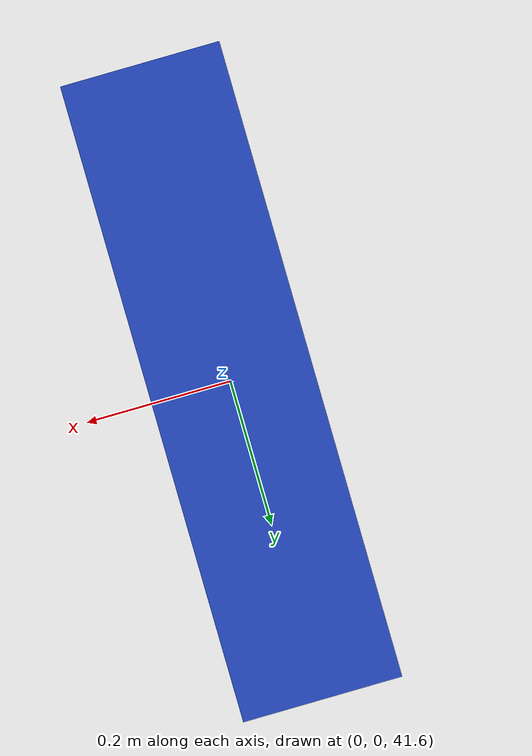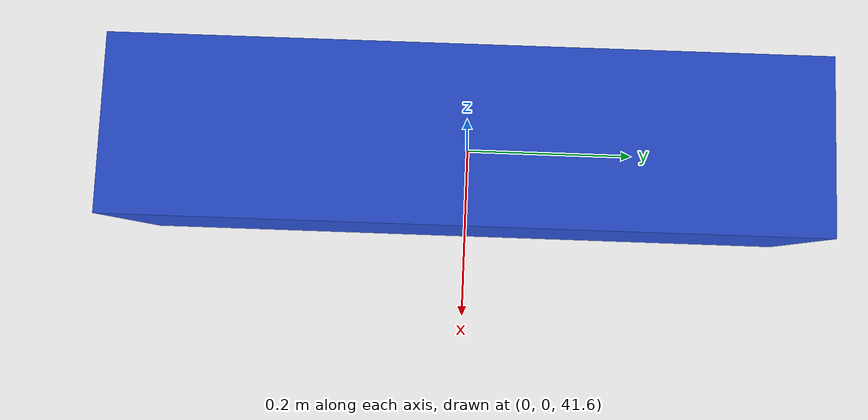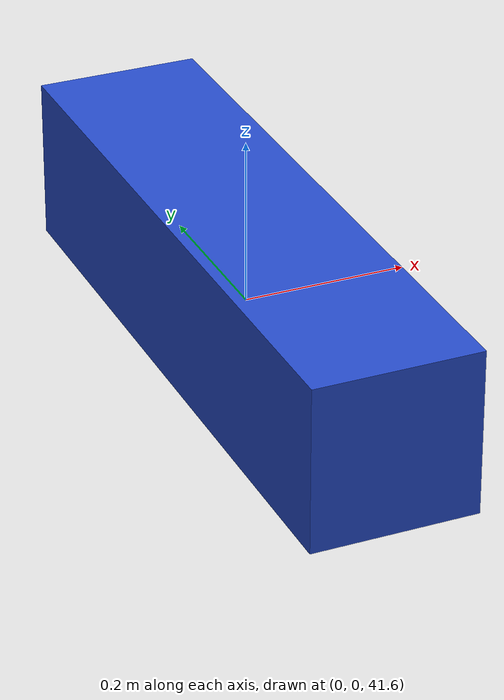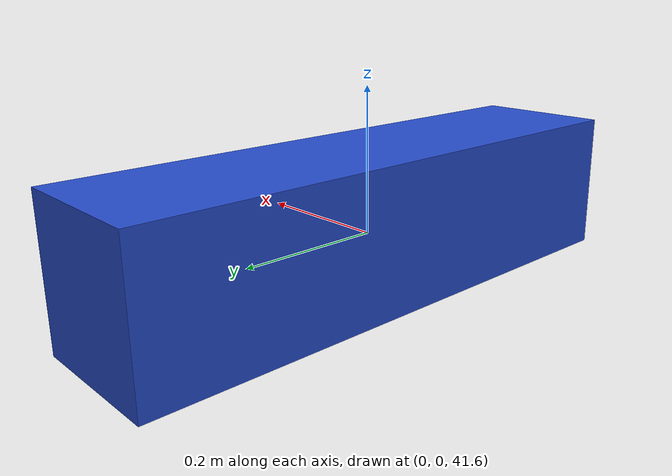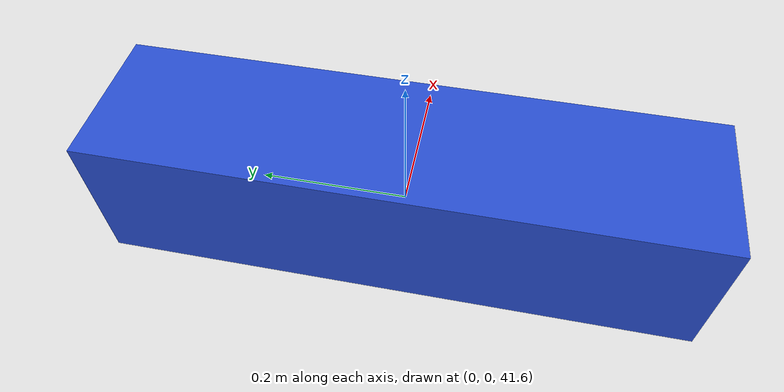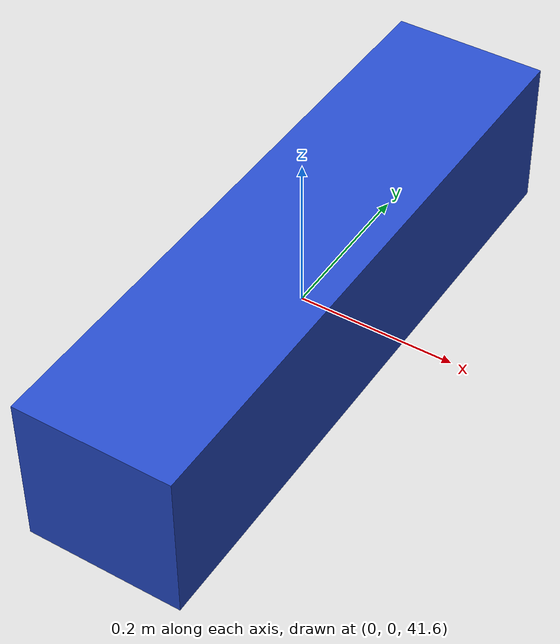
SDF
<sdf version="1.6">
  <world name="default">

  <gui fullscreen='0'>
    <plugin name='keyboard' filename='libKeyboardGUIPlugin.so'/>
      <camera name='user_camera'>
        <pose>0 -5 120 0 1.5708 0</pose>
        <view_controller>orbit</view_controller>
        <projection_type>perspective</projection_type>
      </camera>
  </gui>

  <scene>
    <ambient>0.4 0.4 0.4 1</ambient>
    <background>0.7 0.7 0.7 1</background>
    <shadows>0</shadows>
  </scene>

  <model name='top_camera'> <!-- 모델의 이름 -->
      <link name='top_camera_link'> <!-- 링크 정의 -->
        <inertial>
          <mass>1</mass>
          <inertia>
            <ixx>0.166667</ixx>
            <ixy>0</ixy>
            <ixz>0</ixz>
            <iyy>0.166667</iyy>
            <iyz>0</iyz>
            <izz>0.166667</izz>
          </inertia>
          <pose>0 0 0 0 0 1.57</pose> <!-- 카메라 박스 위치 조정 -->
        </inertial>
        <pose>0 0 0 0 -0 0</pose>
        <gravity>1</gravity>
        <self_collide>0</self_collide>
        <kinematic>0</kinematic>
        <enable_wind>0</enable_wind>
        <visual name='visual'>
          <pose>0 0 0 0 0 1.57</pose> <!-- 카메라 박스 위치 조정 -->
          <geometry>
            <box>
              <size>0.8 0.2 0.2</size>
            </box>
          </geometry>
          <material>
            <lighting>1</lighting>
            <script>
              <uri>file://media/materials/scripts/gazebo.material</uri>
              <name>Gazebo/Blue</name>
            </script>
            <shader type='pixel'>
              <normal_map>__default__</normal_map>
            </shader>
            <ambient>0.3 0.3 0.3 1</ambient>
            <diffuse>0.7 0.7 0.7 1</diffuse>
            <specular>0.01 0.01 0.01 1</specular>
            <emissive>0 0 0 1</emissive>
          </material>
          <transparency>0</transparency>
          <cast_shadows>0</cast_shadows>
        </visual>
        <collision name='collision'>
          <laser_retro>0</laser_retro>
          <max_contacts>10</max_contacts>
          <pose>0 0 0 0 0 1.57</pose> <!-- 카메라 박스 위치 조정 -->
          <geometry>
            <box>
              <size>0.8 0.2 0.2</size>
            </box>
          </geometry>
          <surface>
            <friction>
              <ode>
                <mu>1</mu>
                <mu2>1</mu2>
                <fdir1>0 0 0</fdir1>
                <slip1>0</slip1>
                <slip2>0</slip2>
              </ode>
              <torsional>
                <coefficient>1</coefficient>
                <patch_radius>0</patch_radius>
                <surface_radius>0</surface_radius>
                <use_patch_radius>1</use_patch_radius>
                <ode>
                  <slip>0</slip>
                </ode>
              </torsional>
            </friction>
            <bounce>
              <restitution_coefficient>0</restitution_coefficient>
              <threshold>1e+06</threshold>
            </bounce>
            <contact>
              <collide_without_contact>0</collide_without_contact>
              <collide_without_contact_bitmask>1</collide_without_contact_bitmask>
              <collide_bitmask>1</collide_bitmask>
              <ode>
                <soft_cfm>0</soft_cfm>
                <soft_erp>0.2</soft_erp>
                <kp>1e+13</kp>
                <kd>1</kd>
                <max_vel>0.01</max_vel>
                <min_depth>0</min_depth>
              </ode>
              <bullet>
                <split_impulse>1</split_impulse>
                <split_impulse_penetration_threshold>-0.01</split_impulse_penetration_threshold>
                <soft_cfm>0</soft_cfm>
                <soft_erp>0.2</soft_erp>
                <kp>1e+13</kp>
                <kd>1</kd>
              </bullet>
            </contact>
          </surface>
        </collision>

        <sensor name='top_camera' type='camera'>
          <pose>0 0 0 0 0 0</pose>
          <update_rate>30</update_rate>
          <visualize>1</visualize>
          <camera name='head'>
            <horizontal_fov>1.0856</horizontal_fov>
            <image>
              <width>640</width> <!-- 위성캠 사이즈 조정 -->
              <height>480</height>
              <format>R8G8B8</format>
            </image>
            <clip>
              <near>0.03</near>
              <far>200</far>
            </clip>
            <noise>
              <type>gaussian</type>
              <mean>0</mean>
              <stddev>0.007</stddev>
            </noise>
          </camera>
          <plugin name='top_camera_driver' filename='libgazebo_ros_camera.so'>
            <alwaysOn>1</alwaysOn>
            <updateRate>0.0</updateRate>
            <cameraName>top_camera</cameraName>
            <imageTopicName>image_raw</imageTopicName>
            <cameraInfoTopicName>top_camera_info</cameraInfoTopicName>
            <frameName>camera_link</frameName>
            <hackBaseline>0.07</hackBaseline>
            <distortionK1>0.0</distortionK1>
            <distortionK2>0.0</distortionK2>
            <distortionK3>0.0</distortionK3>
            <distortionT1>0.0</distortionT1>
            <distortionT2>0.0</distortionT2>
          </plugin>
        </sensor>
      </link>
      <static>1</static>
      <allow_auto_disable>1</allow_auto_disable>
      <pose>0 0 41.619400 0 1.57 0</pose> <!-- 카메라 프레임의 위치 조정 -->
    </model>

    <model name="ground">
      <pose>0 0 0 0 0 1.57</pose>
      <static>1</static>

      <link name="ground">
        <collision name="ground_collision">
          <geometry>
            <plane>
              <normal>0 0 1</normal>
              <size>53.83 40.473</size>
            </plane>
          </geometry>
          <surface>
            <contact>
              <ode/>
            </contact>
          </surface>
        </collision>

        <visual name="ground_visual">
          <geometry>
            <plane>
              <normal>0 0 1</normal>
              <size>53.83 40.473</size>
            </plane>
          </geometry>

          <material>
            <script>
              <uri>model://race_track/materials/scripts</uri>
              <uri>model://race_track/materials/textures</uri>
              <name>track</name>
            </script>
          </material>
        </visual>
      </link>
    </model>

    <include>
      <uri>model://sun</uri>
    </include>

    <!-- 신호등 색상 런타임 제어용 (/set_light_properties 서비스 제공) -->
    <plugin name="gazebo_ros_properties" filename="libgazebo_ros_properties.so"/>
    <plugin name="gazebo_ros_state" filename="libgazebo_ros_state.so"><ros><namespace>/gazebo</namespace></ros><update_rate>60.0</update_rate></plugin>
</world>
</sdf>
